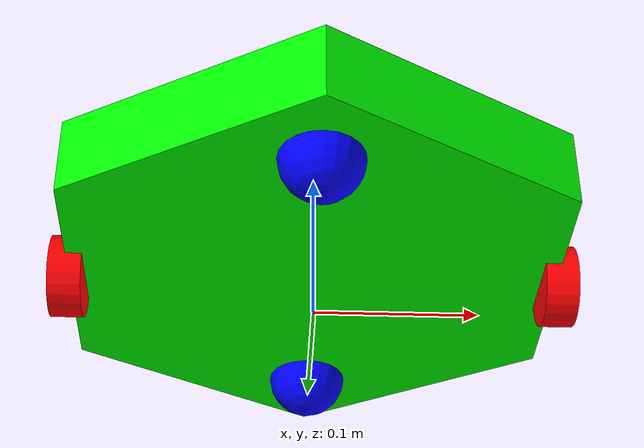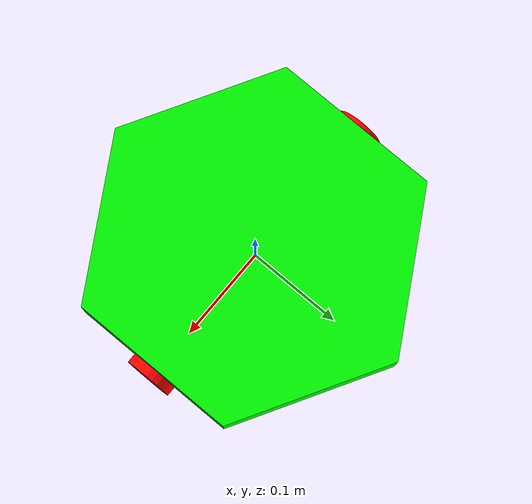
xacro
<robot name="hexarobo_s" xmlns:xacro="http://ros.org/wiki/xacro">

    <xacro:macro name="wheel" params="parent child xyz">
        <joint name="${child}_joint" type="continuous">
            <origin xyz="${xyz}" rpy="${radians(-90)} 0 ${radians(-90)}"/>
            <parent link="${parent}"/>
            <child link="${child}_link"/>
            <axis xyz="0 0 1"/>
            <limit velocity="10.0" effort="0.2" />
            <dynamics damping="0.1"/>
        </joint>
        <transmission name="${child}_move" type="SimpleTransmission">
            <type>transmission_interface/SimpleTransmission</type>
            <actuator name="${child}_motor">
                <mechanicalReduction>1</mechanicalReduction>
            </actuator>
            <joint name="${child}_joint">
                <hardwareInterface>hardware_interface/VelocityJointInterface</hardwareInterface>
            </joint>
        </transmission>
        <link name="${child}_link">
            <inertial>
                <origin xyz="0 0 0" rpy="0 0 0"/>
                <mass value="0.1"/>
                <inertia ixx="0.00002" ixy="0.0" ixz="0.0" iyy="0.00002" iyz="0.0" izz="0.00003"/>
            </inertial>
            <visual>
                <geometry>
                    <cylinder length="0.020" radius="0.025"/>
                </geometry>
                <material name="red">
                    <color rgba="1.0 0.0 0.0 2.0"/>
                </material>
            </visual>
            <collision>
                <geometry>
                    <cylinder length="0.020" radius="0.025"/>
                </geometry>
            </collision>
        </link>
        <gazebo reference="${child}_link">
            <material>Gazebo/Red</material>
            <mu1 value="1.0" />
            <mu2 value="1.0" />
        </gazebo>
    </xacro:macro>

    <xacro:macro name="ball" params="parent child xyz">
        <joint name="${child}_joint" type="fixed">
            <origin xyz="${xyz}" rpy="0 0 0"/>
            <parent link="${parent}"/>
            <child link="${child}_link"/>
        </joint>
        <link name="${child}_link">
            <inertial>
                <origin xyz="0 0 0" rpy="0 0 0"/>
                <mass value="0.1"/>
                <inertia ixx="0.00001" ixy="0.0" ixz="0.0" iyy="0.00001" iyz="0.0" izz="0.00001"/>
            </inertial>
            <visual>
                <geometry>
                    <sphere radius="0.025"/>
                </geometry>
                <material name="blue">
                    <color rgba="0.0 0.0 1.0 2.0"/>
                </material>
            </visual>
            <collision>
                <geometry>
                    <sphere radius="0.025"/>
                </geometry>
            </collision>
        </link>
        <gazebo reference="${child}_link">
            <material>Gazebo/Blue</material>
            <mu1 value="0.5" />
            <mu2 value="0.5" />
        </gazebo>
    </xacro:macro>

    <link name="base_link"/>

    <joint name="body_joint" type="fixed">
        <parent link="base_link"/>
        <child link="body_link"/>
        <origin xyz="0.0 0.0 0.0225" rpy="0 0 0"/>
    </joint>
    <link name="body_link">
        <inertial>
            <origin xyz="0 0 0" rpy="0 0 0"/>
            <mass value="0.3"/>
            <inertia ixx="0.000197" ixy="0.0" ixz="0.0" iyy="0.000197" iyz="0.0" izz="0.000197"/>
        </inertial>
        <visual name="hexa">
            <geometry>
                <mesh filename="package://hexarobo_world/urdf/hexagon_blendered.stl"/>
            </geometry>
            <material name="green">
                <color rgba="0.0 1.0 0.0 2.0"/>
            </material>
        </visual>
        <collision>
            <geometry>
                <mesh filename="package://urdf_test/urdf/hexagon_blendered.stl"/>
            </geometry>
        </collision>
    </link>
    <gazebo reference="body_link">
        <material>Gazebo/Orange</material>
    </gazebo>

    <xacro:wheel parent="body_link" child="left_wheel" xyz="0.15 0 0"/>
    <xacro:wheel parent="body_link" child="right_wheel" xyz="-0.15 0 0"/>

    <xacro:ball parent="body_link" child="front_ball" xyz="0 0.120 0"/>
    <xacro:ball parent="body_link" child="back_ball" xyz="0 -0.120 0"/>

    <gazebo>
        <plugin name="gazebo_ros_control" filename="libgazebo_ros_control.so">
            <robotNamespace>/hexarobo_s</robotNamespace>
            <robotSimType>gazebo_ros_control/DefaultRobotHWSim</robotSimType>
            <legacyModeNS>true</legacyModeNS>
        </plugin>
    </gazebo>
</robot>
